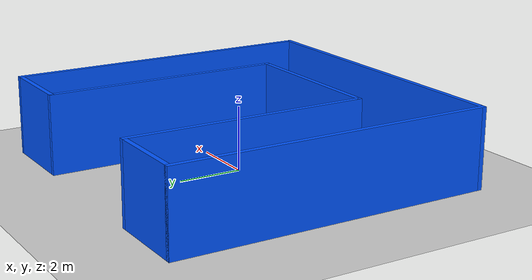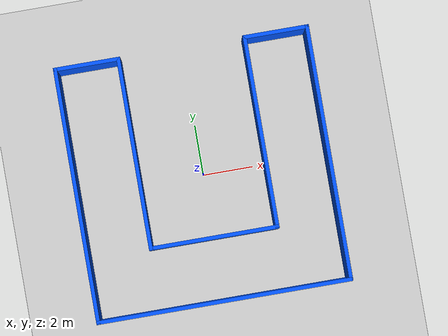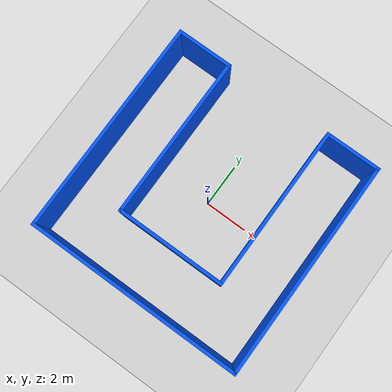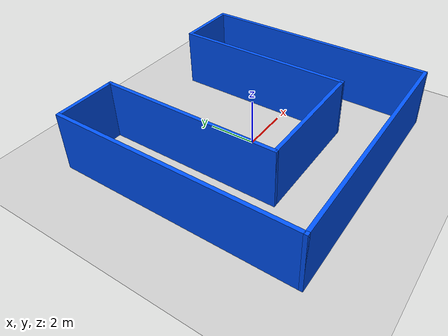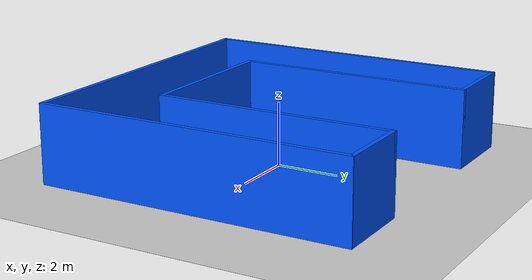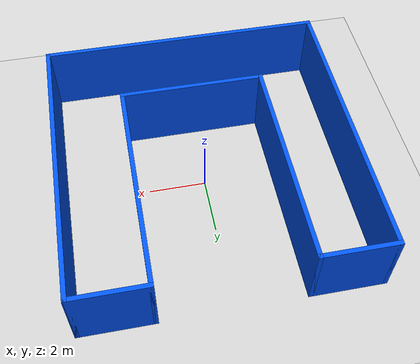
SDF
<sdf version="1.6">
 <world name="default">
  <light name="sun" type="directional">
   <pose>0 0 10 0 -0 0</pose>
   <diffuse>0.8 0.8 0.8 1</diffuse>
   <specular>0.2 0.2 0.2 1</specular>
   <attenuation>
    <range>1000</range>
    <constant>0.9</constant>
    <linear>0.01</linear>
    <quadratic>0.001</quadratic>
   </attenuation>
   <direction>-0.5 0.1 -0.9</direction>
  </light>
  <model name="ground_plane">
   <static>1</static>
   <link name="link">
    <collision name="collision">
     <geometry><plane><normal>0 0 1</normal><size>100 100</size></plane></geometry>
     <surface><friction><ode><mu>100</mu><mu2>50</mu2></ode></friction></surface>
    </collision>
    <visual name="visual">
     <cast_shadows>0</cast_shadows>
     <geometry><plane><normal>0 0 1</normal><size>100 100</size></plane></geometry>
     <material>
      <script><uri>file://media/materials/scripts/gazebo.material</uri><name>Gazebo/Grey</name></script>
     </material>
    </visual>
   </link>
  </model>
  <gravity>0 0 -9.8</gravity>
  <magnetic_field>6e-06 2.3e-05 -4.2e-05</magnetic_field>
  <atmosphere type="adiabatic"/>
  <physics name="default_physics" default="0" type="ode">
   <max_step_size>0.001</max_step_size>
   <real_time_factor>1</real_time_factor>
   <real_time_update_rate>1000</real_time_update_rate>
  </physics>
  <scene><ambient>0.4 0.4 0.4 1</ambient><background>0.7 0.7 0.7 1</background><shadows>1</shadows></scene>
  <spherical_coordinates>
   <surface_model>EARTH_WGS84</surface_model>
   <latitude_deg>0</latitude_deg>
   <longitude_deg>0</longitude_deg>
   <elevation>0</elevation>
   <heading_deg>0</heading_deg>
  </spherical_coordinates>
  <model name="udacity_building">
   <pose>-0.025953 -0.04946 0 0 -0 0</pose>
   <link name="Wall_15">
    <collision name="Wall_15_Collision">
     <geometry><box><size>10.0892 0.15 2.5</size></box></geometry>
     <pose>0 0 1.25 0 -0 0</pose>
    </collision>
    <visual name="Wall_15_Visual">
     <pose>0 0 1.25 0 -0 0</pose>
     <geometry><box><size>10.0892 0.15 2.5</size></box></geometry>
     <material>
      <script><uri>file://media/materials/scripts/gazebo.material</uri><name>Gazebo/Grey</name></script>
      <ambient>0 0.333333 1 1</ambient>
     </material>
     <meta><layer>0</layer></meta>
    </visual>
    <pose>-0.015209 -5 0 0 -0 0</pose>
   </link>
   <link name="Wall_17">
    <collision name="Wall_17_Collision">
     <geometry><box><size>10.15 0.15 2.5</size></box></geometry>
     <pose>0 0 1.25 0 -0 0</pose>
    </collision>
    <visual name="Wall_17_Visual">
     <pose>0 0 1.25 0 -0 0</pose>
     <geometry><box><size>10.15 0.15 2.5</size></box></geometry>
     <material>
      <script><uri>file://media/materials/scripts/gazebo.material</uri><name>Gazebo/Grey</name></script>
      <ambient>0 0.333333 1 1</ambient>
     </material>
     <meta><layer>0</layer></meta>
    </visual>
    <pose>-4.98479 0 0 0 -0 1.5708</pose>
   </link>
   <link name="Wall_19">
    <collision name="Wall_19_Collision">
     <geometry><box><size>2.65 0.15 2.5</size></box></geometry>
     <pose>0 0 1.25 0 -0 0</pose>
    </collision>
    <visual name="Wall_19_Visual">
     <pose>0 0 1.25 0 -0 0</pose>
     <geometry><box><size>2.65 0.15 2.5</size></box></geometry>
     <material>
      <script><uri>file://media/materials/scripts/gazebo.material</uri><name>Gazebo/Grey</name></script>
      <ambient>0 0.333333 1 1</ambient>
     </material>
     <meta><layer>0</layer></meta>
    </visual>
    <pose>-3.73479 5 0 0 -0 0</pose>
   </link>
   <link name="Wall_21">
    <collision name="Wall_21_Collision">
     <geometry><box><size>7.65 0.15 2.5</size></box></geometry>
     <pose>0 0 1.25 0 -0 0</pose>
    </collision>
    <visual name="Wall_21_Visual">
     <pose>0 0 1.25 0 -0 0</pose>
     <geometry><box><size>7.65 0.15 2.5</size></box></geometry>
     <material>
      <script><uri>file://media/materials/scripts/gazebo.material</uri><name>Gazebo/Grey</name></script>
      <ambient>0 0.333333 1 1</ambient>
     </material>
     <meta><layer>0</layer></meta>
    </visual>
    <pose>-2.48479 1.25 0 0 0 -1.5708</pose>
   </link>
   <link name="Wall_23">
    <collision name="Wall_23_Collision">
     <geometry><box><size>5.15 0.15 2.5</size></box></geometry>
     <pose>0 0 1.25 0 -0 0</pose>
    </collision>
    <visual name="Wall_23_Visual">
     <pose>0 0 1.25 0 -0 0</pose>
     <geometry><box><size>5.15 0.15 2.5</size></box></geometry>
     <material>
      <script><uri>file://media/materials/scripts/gazebo.material</uri><name>Gazebo/Grey</name></script>
      <ambient>0 0.333333 1 1</ambient>
     </material>
     <meta><layer>0</layer></meta>
    </visual>
    <pose>0.015209 -2.5 0 0 -0 0</pose>
   </link>
   <link name="Wall_25">
    <collision name="Wall_25_Collision">
     <geometry><box><size>7.65 0.15 2.5</size></box></geometry>
     <pose>0 0 1.25 0 -0 0</pose>
    </collision>
    <visual name="Wall_25_Visual">
     <pose>0 0 1.25 0 -0 0</pose>
     <geometry><box><size>7.65 0.15 2.5</size></box></geometry>
     <material>
      <script><uri>file://media/materials/scripts/gazebo.material</uri><name>Gazebo/Grey</name></script>
      <ambient>0 0.333333 1 1</ambient>
     </material>
     <meta><layer>0</layer></meta>
    </visual>
    <pose>2.51521 1.25 0 0 -0 1.5708</pose>
   </link>
   <link name="Wall_27">
    <collision name="Wall_27_Collision">
     <geometry><box><size>2.58916 0.15 2.5</size></box></geometry>
     <pose>0 0 1.25 0 -0 0</pose>
    </collision>
    <visual name="Wall_27_Visual">
     <pose>0 0 1.25 0 -0 0</pose>
     <geometry><box><size>2.58916 0.15 2.5</size></box></geometry>
     <material>
      <script><uri>file://media/materials/scripts/gazebo.material</uri><name>Gazebo/Grey</name></script>
      <ambient>0 0.333333 1 1</ambient>
     </material>
     <meta><layer>0</layer></meta>
    </visual>
    <pose>3.73479 5 0 0 -0 0</pose>
   </link>
   <link name="Wall_29">
    <collision name="Wall_29_Collision">
     <geometry><box><size>10.15 0.15 2.5</size></box></geometry>
     <pose>0 0 1.25 0 -0 0</pose>
    </collision>
    <visual name="Wall_29_Visual">
     <pose>0 0 1.25 0 -0 0</pose>
     <geometry><box><size>10.15 0.15 2.5</size></box></geometry>
     <material>
      <script><uri>file://media/materials/scripts/gazebo.material</uri><name>Gazebo/Grey</name></script>
      <ambient>0 0.333333 1 1</ambient>
     </material>
     <meta><layer>0</layer></meta>
    </visual>
    <pose>4.98479 0 0 0 -0 1.5708</pose>
   </link>
   <static>1</static>
  </model>
 </world>
</sdf>
